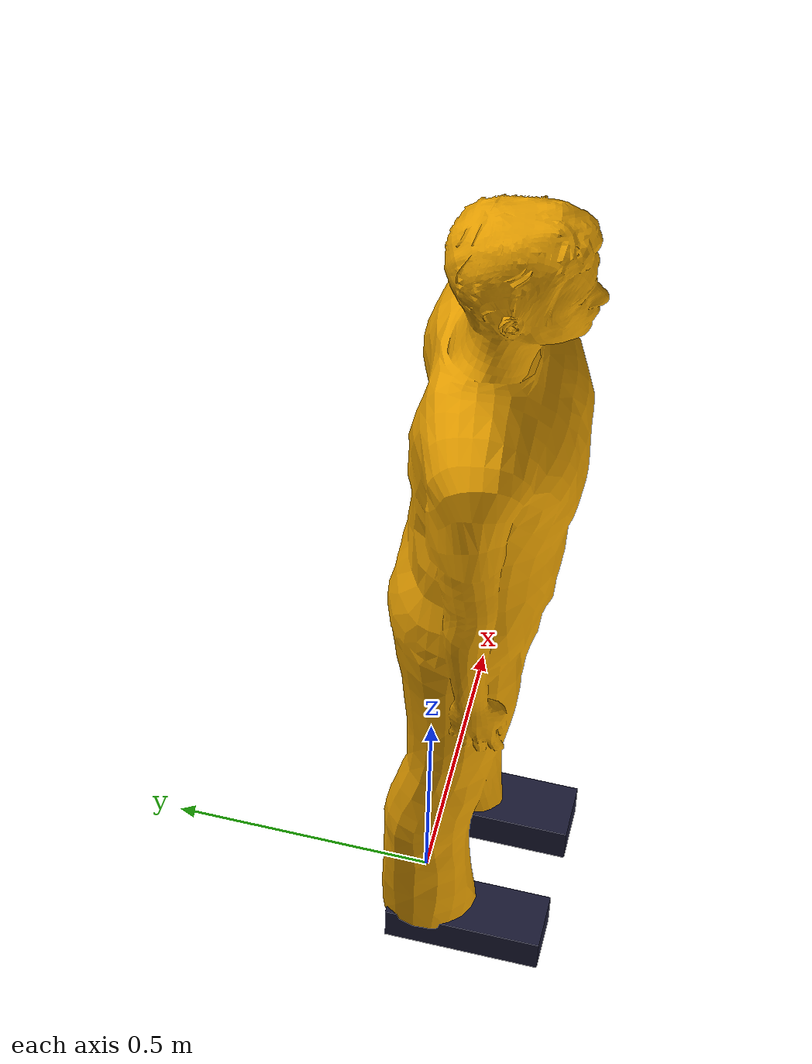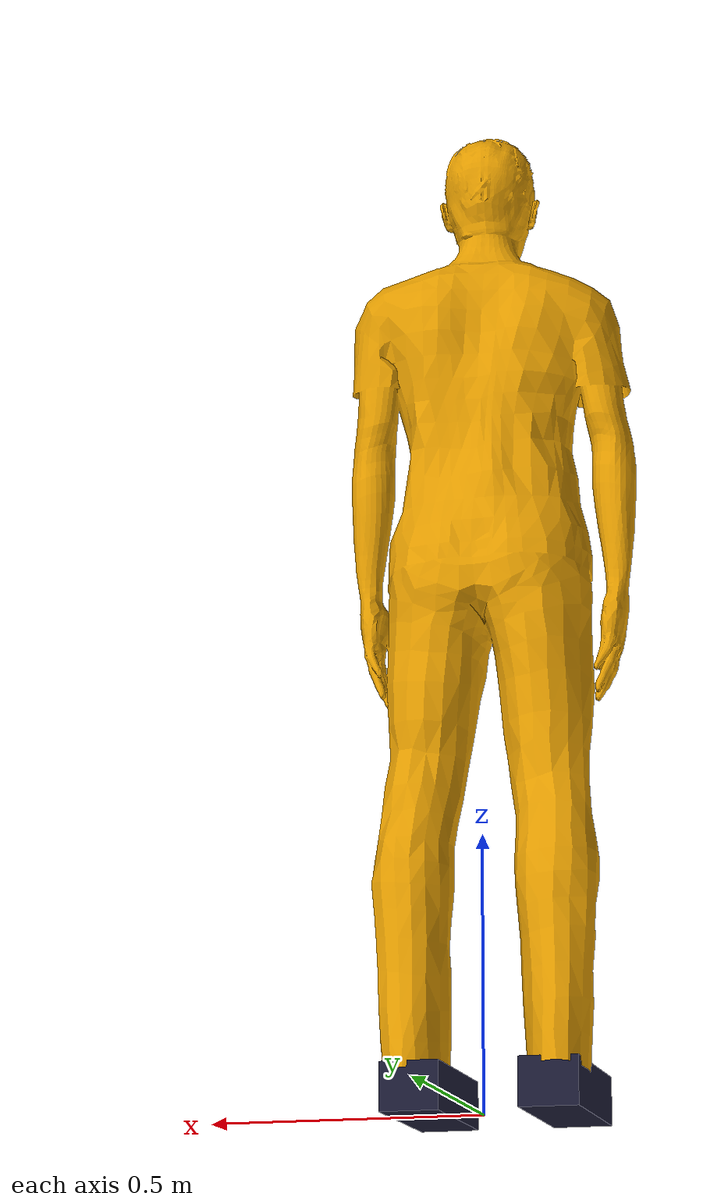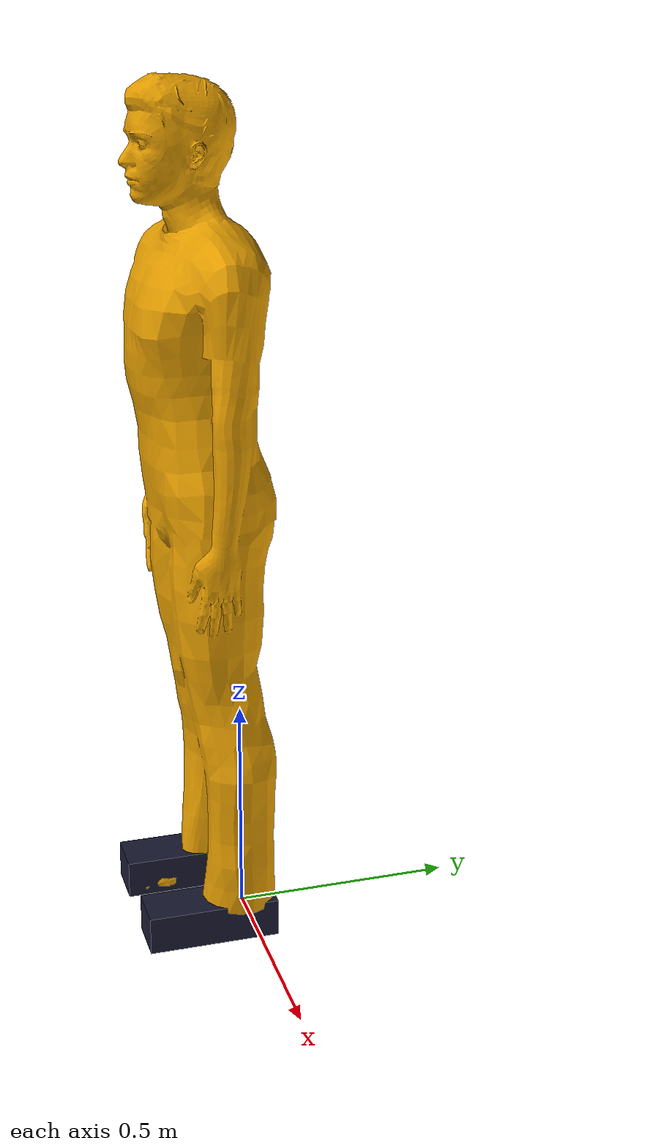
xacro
<robot  xmlns:xacro="http://ros.org/wiki/xacro" name="person_standing_model">
  <xacro:include filename="$(find mobipick_description)/urdf/common_properties.urdf.xacro" />

  <xacro:property name="mass" value="80.0" />
  <xacro:property name="mesh_file" value="package://mobipick_gazebo/meshes/person_standing/standing.dae" />

  <link name="person_standing">
    <inertial>
      <origin xyz="0 -0.1 0.95" rpy="0 0 0" />
      <mass value="${mass}" />
      <inertia ixx="24.88" ixy="0.0" ixz="0.0"
        iyy="25.73" iyz="0.0"
        izz="2.48" />
    </inertial>
    <visual>
      <origin xyz="0 0 0.02" rpy="0.04 0 0" />
      <geometry>
        <mesh filename="${mesh_file}" />
      </geometry>
    </visual>
    <!-- left shoe -->
    <visual>
      <origin xyz="0.127247 -0.108882 0.051576" rpy="0 0 0" />
      <geometry>
        <box size="0.107316 0.298547 0.087956" />
      </geometry>
      <material name="person_shoe_dark_blue">
        <color rgba="0.1 0.1 0.2 1" />
      </material>
    </visual>
    <!-- right shoe -->
    <visual>
      <origin xyz="-0.122268 -0.108882 0.051576" rpy="0 0 0" />
      <geometry>
        <box size="0.107316 0.298547 0.087956" />
      </geometry>
      <material name="person_shoe_dark_blue">
        <color rgba="0.1 0.1 0.2 1" />
      </material>
    </visual>
    <collision>
      <origin xyz="0 0 0.02" rpy="0.04 0 0" />
      <geometry>
        <mesh filename="${mesh_file}" />
      </geometry>
    </collision>
    <!-- flat bottom contact patch so the person stands stably -->
    <collision>
      <origin xyz="0 -0.1 0.01" rpy="0 0 0" />
      <geometry>
        <box size="0.5 0.35 0.02" />
      </geometry>
    </collision>
  </link>

  <gazebo reference="person_standing">
    <mu1>1.0</mu1>
    <mu2>1.0</mu2>
    <kp>1e+06</kp>
    <kd>1.0</kd>
    <minDepth>0.002</minDepth>
  </gazebo>

</robot>
